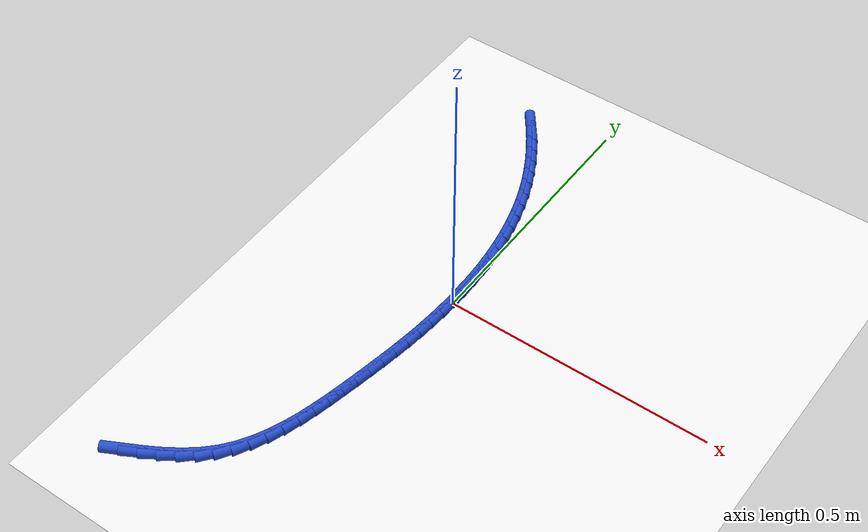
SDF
<sdf version="1.6">
 <world name="default">
  <model name="ground_plane">
   <static>1</static>
   <link name="link">
    <collision name="collision">
     <geometry><plane><normal>0 0 1</normal><size>100 100</size></plane></geometry>
     <surface><friction><ode><mu>100</mu><mu2>50</mu2></ode></friction></surface>
    </collision>
    <visual name="visual">
     <cast_shadows>0</cast_shadows>
     <geometry><plane><normal>0 0 1</normal><size>100 100</size></plane></geometry>
     <material>
      <script><uri>file://media/materials/scripts/gazebo.material</uri><name>Gazebo/WhiteGlow</name></script>
     </material>
    </visual>
   </link>
  </model>
  <model name="line">
   <link name="link_0">
    <pose>-5.637851296924623e-18 2.7755575615628914e-17 0.01 0 1.57 1.561397867759516</pose>
    <collision name="collision">
     <geometry><cylinder><radius>0.01</radius><length>0.08</length></cylinder></geometry>
    </collision>
    <visual name="visual">
     <material>
      <script><name>Gazebo/Blue</name><uri>file://media/materials/scripts/gazebo.material</uri></script>
     </material>
     <geometry><cylinder><radius>0.01</radius><length>0.08</length></cylinder></geometry>
    </visual>
   </link>
   <link name="link_1">
    <pose>0.00027525127807984047 0.029285989605968513 0.01 0 1.57 -1.548251285958362</pose>
    <collision name="collision">
     <geometry><cylinder><radius>0.01</radius><length>0.08</length></cylinder></geometry>
    </collision>
    <visual name="visual">
     <material>
      <script><name>Gazebo/Blue</name><uri>file://media/materials/scripts/gazebo.material</uri></script>
     </material>
     <geometry><cylinder><radius>0.01</radius><length>0.08</length></cylinder></geometry>
    </visual>
   </link>
   <link name="link_2">
    <pose>-0.0003881495568125055 0.05870658096135193 0.01 0 1.57 -1.514962224122844</pose>
    <collision name="collision">
     <geometry><cylinder><radius>0.01</radius><length>0.08</length></cylinder></geometry>
    </collision>
    <visual name="visual">
     <material>
      <script><name>Gazebo/Blue</name><uri>file://media/materials/scripts/gazebo.material</uri></script>
     </material>
     <geometry><cylinder><radius>0.01</radius><length>0.08</length></cylinder></geometry>
    </visual>
   </link>
   <link name="link_3">
    <pose>-0.002034328469329102 0.08815933211182136 0.01 0 1.57 -1.4800706377789132</pose>
    <collision name="collision">
     <geometry><cylinder><radius>0.01</radius><length>0.08</length></cylinder></geometry>
    </collision>
    <visual name="visual">
     <material>
      <script><name>Gazebo/Blue</name><uri>file://media/materials/scripts/gazebo.material</uri></script>
     </material>
     <geometry><cylinder><radius>0.01</radius><length>0.08</length></cylinder></geometry>
    </visual>
   </link>
   <link name="link_4">
    <pose>-0.004707411424122017 0.11754180110304793 0.01 0 1.57 -1.4433112256710268</pose>
    <collision name="collision">
     <geometry><cylinder><radius>0.01</radius><length>0.08</length></cylinder></geometry>
    </collision>
    <visual name="visual">
     <material>
      <script><name>Gazebo/Blue</name><uri>file://media/materials/scripts/gazebo.material</uri></script>
     </material>
     <geometry><cylinder><radius>0.01</radius><length>0.08</length></cylinder></geometry>
    </visual>
   </link>
   <link name="link_5">
    <pose>-0.0084515243858433 0.14675154598070256 0.01 0 1.57 -1.4044091291113399</pose>
    <collision name="collision">
     <geometry><cylinder><radius>0.01</radius><length>0.08</length></cylinder></geometry>
    </collision>
    <visual name="visual">
     <material>
      <script><name>Gazebo/Blue</name><uri>file://media/materials/scripts/gazebo.material</uri></script>
     </material>
     <geometry><cylinder><radius>0.01</radius><length>0.08</length></cylinder></geometry>
    </visual>
   </link>
   <link name="link_6">
    <pose>-0.013310793319145016 0.17568612479045628 0.01 0 1.57 -1.363080243468595</pose>
    <collision name="collision">
     <geometry><cylinder><radius>0.01</radius><length>0.08</length></cylinder></geometry>
    </collision>
    <visual name="visual">
     <material>
      <script><name>Gazebo/Blue</name><uri>file://media/materials/scripts/gazebo.material</uri></script>
     </material>
     <geometry><cylinder><radius>0.01</radius><length>0.08</length></cylinder></geometry>
    </visual>
   </link>
   <link name="link_7">
    <pose>-0.019329344188679223 0.2042430955779802 0.01 0 1.57 -1.3190335570943579</pose>
    <collision name="collision">
     <geometry><cylinder><radius>0.01</radius><length>0.08</length></cylinder></geometry>
    </collision>
    <visual name="visual">
     <material>
      <script><name>Gazebo/Blue</name><uri>file://media/materials/scripts/gazebo.material</uri></script>
     </material>
     <geometry><cylinder><radius>0.01</radius><length>0.08</length></cylinder></geometry>
    </visual>
   </link>
   <link name="link_8">
    <pose>-0.026551302959097984 0.23232001638894534 0.01 0 1.57 -1.2720205170319978</pose>
    <collision name="collision">
     <geometry><cylinder><radius>0.01</radius><length>0.08</length></cylinder></geometry>
    </collision>
    <visual name="visual">
     <material>
      <script><name>Gazebo/Blue</name><uri>file://media/materials/scripts/gazebo.material</uri></script>
     </material>
     <geometry><cylinder><radius>0.01</radius><length>0.08</length></cylinder></geometry>
    </visual>
   </link>
   <link name="link_9">
    <pose>-0.03501991515965042 0.2598159189661814 0.01 0 1.57 -1.2234963787218534</pose>
    <collision name="collision">
     <geometry><cylinder><radius>0.01</radius><length>0.08</length></cylinder></geometry>
    </collision>
    <visual name="visual">
     <material>
      <script><name>Gazebo/Blue</name><uri>file://media/materials/scripts/gazebo.material</uri></script>
     </material>
     <geometry><cylinder><radius>0.01</radius><length>0.08</length></cylinder></geometry>
    </visual>
   </link>
   <link name="link_10">
    <pose>-0.04474565112624375 0.2866846950787487 0.01 0 1.57 -1.1757572121481534</pose>
    <collision name="collision">
     <geometry><cylinder><radius>0.01</radius><length>0.08</length></cylinder></geometry>
    </collision>
    <visual name="visual">
     <material>
      <script><name>Gazebo/Blue</name><uri>file://media/materials/scripts/gazebo.material</uri></script>
     </material>
     <geometry><cylinder><radius>0.01</radius><length>0.08</length></cylinder></geometry>
    </visual>
   </link>
   <link name="link_11">
    <pose>-0.05569722637395822 0.31295012687108886 0.01 0 1.57 -1.1292400550771662</pose>
    <collision name="collision">
     <geometry><cylinder><radius>0.01</radius><length>0.08</length></cylinder></geometry>
    </collision>
    <visual name="visual">
     <material>
      <script><name>Gazebo/Blue</name><uri>file://media/materials/scripts/gazebo.material</uri></script>
     </material>
     <geometry><cylinder><radius>0.01</radius><length>0.08</length></cylinder></geometry>
    </visual>
   </link>
   <link name="link_12">
    <pose>-0.06784064698292787 0.3386405316148859 0.01 0 1.57 -1.0842107722266923</pose>
    <collision name="collision">
     <geometry><cylinder><radius>0.01</radius><length>0.08</length></cylinder></geometry>
    </collision>
    <visual name="visual">
     <material>
      <script><name>Gazebo/Blue</name><uri>file://media/materials/scripts/gazebo.material</uri></script>
     </material>
     <geometry><cylinder><radius>0.01</radius><length>0.08</length></cylinder></geometry>
    </visual>
   </link>
   <link name="link_13">
    <pose>-0.08114191903328674 0.3637842265818242 0.01 0 1.57 -1.0408947050663275</pose>
    <collision name="collision">
     <geometry><cylinder><radius>0.01</radius><length>0.08</length></cylinder></geometry>
    </collision>
    <visual name="visual">
     <material>
      <script><name>Gazebo/Blue</name><uri>file://media/materials/scripts/gazebo.material</uri></script>
     </material>
     <geometry><cylinder><radius>0.01</radius><length>0.08</length></cylinder></geometry>
    </visual>
   </link>
   <link name="link_14">
    <pose>-0.09556704860516888 0.3884095290435879 0.01 0 1.57 -0.9994738002689617</pose>
    <collision name="collision">
     <geometry><cylinder><radius>0.01</radius><length>0.08</length></cylinder></geometry>
    </collision>
    <visual name="visual">
     <material>
      <script><name>Gazebo/Blue</name><uri>file://media/materials/scripts/gazebo.material</uri></script>
     </material>
     <geometry><cylinder><radius>0.01</radius><length>0.08</length></cylinder></geometry>
    </visual>
   </link>
   <link name="link_15">
    <pose>-0.11108204177870831 0.4125447562718611 0.01 0 1.57 -0.9600863981843658</pose>
    <collision name="collision">
     <geometry><cylinder><radius>0.01</radius><length>0.08</length></cylinder></geometry>
    </collision>
    <visual name="visual">
     <material>
      <script><name>Gazebo/Blue</name><uri>file://media/materials/scripts/gazebo.material</uri></script>
     </material>
     <geometry><cylinder><radius>0.01</radius><length>0.08</length></cylinder></geometry>
    </visual>
   </link>
   <link name="link_16">
    <pose>-0.12765290463403917 0.43621822553832834 0.01 0 1.57 -0.9228292383784431</pose>
    <collision name="collision">
     <geometry><cylinder><radius>0.01</radius><length>0.08</length></cylinder></geometry>
    </collision>
    <visual name="visual">
     <material>
      <script><name>Gazebo/Blue</name><uri>file://media/materials/scripts/gazebo.material</uri></script>
     </material>
     <geometry><cylinder><radius>0.01</radius><length>0.08</length></cylinder></geometry>
    </visual>
   </link>
   <link name="link_228">
    <pose>-0.2448302101102575 -0.5636305633604234 0.01 0 1.57 0.4773172359151589</pose>
    <collision name="collision">
     <geometry><cylinder><radius>0.01</radius><length>0.08</length></cylinder></geometry>
    </collision>
    <visual name="visual">
     <material>
      <script><name>Gazebo/Blue</name><uri>file://media/materials/scripts/gazebo.material</uri></script>
     </material>
     <geometry><cylinder><radius>0.01</radius><length>0.08</length></cylinder></geometry>
    </visual>
   </link>
   <link name="link_229">
    <pose>-0.21663461224299072 -0.5490476393409937 0.01 0 1.57 0.5208552164141109</pose>
    <collision name="collision">
     <geometry><cylinder><radius>0.01</radius><length>0.08</length></cylinder></geometry>
    </collision>
    <visual name="visual">
     <material>
      <script><name>Gazebo/Blue</name><uri>file://media/materials/scripts/gazebo.material</uri></script>
     </material>
     <geometry><cylinder><radius>0.01</radius><length>0.08</length></cylinder></geometry>
    </visual>
   </link>
   <link name="link_230">
    <pose>-0.18956062818058614 -0.5335153497436242 0.01 0 1.57 0.5840720616418952</pose>
    <collision name="collision">
     <geometry><cylinder><radius>0.01</radius><length>0.08</length></cylinder></geometry>
    </collision>
    <visual name="visual">
     <material>
      <script><name>Gazebo/Blue</name><uri>file://media/materials/scripts/gazebo.material</uri></script>
     </material>
     <geometry><cylinder><radius>0.01</radius><length>0.08</length></cylinder></geometry>
    </visual>
   </link>
   <link name="link_231">
    <pose>-0.1641094821897093 -0.5166920397709792 0.01 0 1.57 0.6693413709127856</pose>
    <collision name="collision">
     <geometry><cylinder><radius>0.01</radius><length>0.08</length></cylinder></geometry>
    </collision>
    <visual name="visual">
     <material>
      <script><name>Gazebo/Blue</name><uri>file://media/materials/scripts/gazebo.material</uri></script>
     </material>
     <geometry><cylinder><radius>0.01</radius><length>0.08</length></cylinder></geometry>
    </visual>
   </link>
   <link name="link_232">
    <pose>-0.1407823985370258 -0.49823605462572246 0.01 0 1.57 0.7787603771122028</pose>
    <collision name="collision">
     <geometry><cylinder><radius>0.01</radius><length>0.08</length></cylinder></geometry>
    </collision>
    <visual name="visual">
     <material>
      <script><name>Gazebo/Blue</name><uri>file://media/materials/scripts/gazebo.material</uri></script>
     </material>
     <geometry><cylinder><radius>0.01</radius><length>0.08</length></cylinder></geometry>
    </visual>
   </link>
   <link name="link_233">
    <pose>-0.12007972861773199 -0.47780641618866987 0.01 0 1.57 0.9029127635339222</pose>
    <collision name="collision">
     <geometry><cylinder><radius>0.01</radius><length>0.08</length></cylinder></geometry>
    </collision>
    <visual name="visual">
     <material>
      <script><name>Gazebo/Blue</name><uri>file://media/materials/scripts/gazebo.material</uri></script>
     </material>
     <geometry><cylinder><radius>0.01</radius><length>0.08</length></cylinder></geometry>
    </visual>
   </link>
   <link name="link_234">
    <pose>-0.10227649652714468 -0.45523682734042986 0.01 0 1.57 1.016338295662614</pose>
    <collision name="collision">
     <geometry><cylinder><radius>0.01</radius><length>0.08</length></cylinder></geometry>
    </collision>
    <visual name="visual">
     <material>
      <script><name>Gazebo/Blue</name><uri>file://media/materials/scripts/gazebo.material</uri></script>
     </material>
     <geometry><cylinder><radius>0.01</radius><length>0.08</length></cylinder></geometry>
    </visual>
   </link>
   <link name="link_235">
    <pose>-0.08712360330202244 -0.43076730808311237 0.01 0 1.57 1.1136096589686129</pose>
    <collision name="collision">
     <geometry><cylinder><radius>0.01</radius><length>0.08</length></cylinder></geometry>
    </collision>
    <visual name="visual">
     <material>
      <script><name>Gazebo/Blue</name><uri>file://media/materials/scripts/gazebo.material</uri></script>
     </material>
     <geometry><cylinder><radius>0.01</radius><length>0.08</length></cylinder></geometry>
    </visual>
   </link>
   <link name="link_236">
    <pose>-0.07429759493320293 -0.40469552085171573 0.01 0 1.57 1.1943264480536624</pose>
    <collision name="collision">
     <geometry><cylinder><radius>0.01</radius><length>0.08</length></cylinder></geometry>
    </collision>
    <visual name="visual">
     <material>
      <script><name>Gazebo/Blue</name><uri>file://media/materials/scripts/gazebo.material</uri></script>
     </material>
     <geometry><cylinder><radius>0.01</radius><length>0.08</length></cylinder></geometry>
    </visual>
   </link>
   <link name="link_237">
    <pose>-0.06347501741152378 -0.37731912808123774 0.01 0 1.57 1.2591791342178982</pose>
    <collision name="collision">
     <geometry><cylinder><radius>0.01</radius><length>0.08</length></cylinder></geometry>
    </collision>
    <visual name="visual">
     <material>
      <script><name>Gazebo/Blue</name><uri>file://media/materials/scripts/gazebo.material</uri></script>
     </material>
     <geometry><cylinder><radius>0.01</radius><length>0.08</length></cylinder></geometry>
    </visual>
   </link>
   <link name="link_238">
    <pose>-0.0543324167278226 -0.3489357922066765 0.01 0 1.57 1.3092941033102719</pose>
    <collision name="collision">
     <geometry><cylinder><radius>0.01</radius><length>0.08</length></cylinder></geometry>
    </collision>
    <visual name="visual">
     <material>
      <script><name>Gazebo/Blue</name><uri>file://media/materials/scripts/gazebo.material</uri></script>
     </material>
     <geometry><cylinder><radius>0.01</radius><length>0.08</length></cylinder></geometry>
    </visual>
   </link>
   <link name="link_239">
    <pose>-0.04654633887293702 -0.31984317566302983 0.01 0 1.57 1.3457893580686118</pose>
    <collision name="collision">
     <geometry><cylinder><radius>0.01</radius><length>0.08</length></cylinder></geometry>
    </collision>
    <visual name="visual">
     <material>
      <script><name>Gazebo/Blue</name><uri>file://media/materials/scripts/gazebo.material</uri></script>
     </material>
     <geometry><cylinder><radius>0.01</radius><length>0.08</length></cylinder></geometry>
    </visual>
   </link>
   <link name="link_240">
    <pose>-0.03979332983770484 -0.2903389408852969 0.01 0 1.57 1.3695159901515952</pose>
    <collision name="collision">
     <geometry><cylinder><radius>0.01</radius><length>0.08</length></cylinder></geometry>
    </collision>
    <visual name="visual">
     <material>
      <script><name>Gazebo/Blue</name><uri>file://media/materials/scripts/gazebo.material</uri></script>
     </material>
     <geometry><cylinder><radius>0.01</radius><length>0.08</length></cylinder></geometry>
    </visual>
   </link>
   <link name="link_241">
    <pose>-0.033749935612963335 -0.26072075030847364 0.01 0 1.57 1.381445154050231</pose>
    <collision name="collision">
     <geometry><cylinder><radius>0.01</radius><length>0.08</length></cylinder></geometry>
    </collision>
    <visual name="visual">
     <material>
      <script><name>Gazebo/Blue</name><uri>file://media/materials/scripts/gazebo.material</uri></script>
     </material>
     <geometry><cylinder><radius>0.01</radius><length>0.08</length></cylinder></geometry>
    </visual>
   </link>
   <link name="link_242">
    <pose>-0.028106504422727566 -0.23127375472579328 0.01 0 1.57 1.3898043378636258</pose>
    <collision name="collision">
     <geometry><cylinder><radius>0.01</radius><length>0.08</length></cylinder></geometry>
    </collision>
    <visual name="visual">
     <material>
      <script><name>Gazebo/Blue</name><uri>file://media/materials/scripts/gazebo.material</uri></script>
     </material>
     <geometry><cylinder><radius>0.01</radius><length>0.08</length></cylinder></geometry>
    </visual>
   </link>
   <link name="link_243">
    <pose>-0.022766089274403014 -0.20209028931742914 0.01 0 1.57 1.4010326400703832</pose>
    <collision name="collision">
     <geometry><cylinder><radius>0.01</radius><length>0.08</length></cylinder></geometry>
    </collision>
    <visual name="visual">
     <material>
      <script><name>Gazebo/Blue</name><uri>file://media/materials/scripts/gazebo.material</uri></script>
     </material>
     <geometry><cylinder><radius>0.01</radius><length>0.08</length></cylinder></geometry>
    </visual>
   </link>
   <link name="link_244">
    <pose>-0.017798704504943846 -0.1731113398176185 0.01 0 1.57 1.4153259311116546</pose>
    <collision name="collision">
     <geometry><cylinder><radius>0.01</radius><length>0.08</length></cylinder></geometry>
    </collision>
    <visual name="visual">
     <material>
      <script><name>Gazebo/Blue</name><uri>file://media/materials/scripts/gazebo.material</uri></script>
     </material>
     <geometry><cylinder><radius>0.01</radius><length>0.08</length></cylinder></geometry>
    </visual>
   </link>
   <link name="link_245">
    <pose>-0.013278849509986462 -0.14427382628174754 0.01 0 1.57 1.4326709627918808</pose>
    <collision name="collision">
     <geometry><cylinder><radius>0.01</radius><length>0.08</length></cylinder></geometry>
    </collision>
    <visual name="visual">
     <material>
      <script><name>Gazebo/Blue</name><uri>file://media/materials/scripts/gazebo.material</uri></script>
     </material>
     <geometry><cylinder><radius>0.01</radius><length>0.08</length></cylinder></geometry>
    </visual>
   </link>
   <link name="link_246">
    <pose>-0.009281023685167247 -0.11551466876520226 0.01 0 1.57 1.453012859393993</pose>
    <collision name="collision">
     <geometry><cylinder><radius>0.01</radius><length>0.08</length></cylinder></geometry>
    </collision>
    <visual name="visual">
     <material>
      <script><name>Gazebo/Blue</name><uri>file://media/materials/scripts/gazebo.material</uri></script>
     </material>
     <geometry><cylinder><radius>0.01</radius><length>0.08</length></cylinder></geometry>
    </visual>
   </link>
   <link name="link_247">
    <pose>-0.005879726426122606 -0.08677078732336882 0.01 0 1.57 1.4762506540079268</pose>
    <collision name="collision">
     <geometry><cylinder><radius>0.01</radius><length>0.08</length></cylinder></geometry>
    </collision>
    <visual name="visual">
     <material>
      <script><name>Gazebo/Blue</name><uri>file://media/materials/scripts/gazebo.material</uri></script>
     </material>
     <geometry><cylinder><radius>0.01</radius><length>0.08</length></cylinder></geometry>
    </visual>
   </link>
   <link name="link_248">
    <pose>-0.0031494571284889214 -0.05797910201163321 0.01 0 1.57 1.502233875059556</pose>
    <collision name="collision">
     <geometry><cylinder><radius>0.01</radius><length>0.08</length></cylinder></geometry>
    </collision>
    <visual name="visual">
     <material>
      <script><name>Gazebo/Blue</name><uri>file://media/materials/scripts/gazebo.material</uri></script>
     </material>
     <geometry><cylinder><radius>0.01</radius><length>0.08</length></cylinder></geometry>
    </visual>
   </link>
   <link name="link_249">
    <pose>-0.001164715187902586 -0.029076532885381503 0.01 0 1.57 1.530760850687433</pose>
    <collision name="collision">
     <geometry><cylinder><radius>0.01</radius><length>0.08</length></cylinder></geometry>
    </collision>
    <visual name="visual">
     <material>
      <script><name>Gazebo/Blue</name><uri>file://media/materials/scripts/gazebo.material</uri></script>
     </material>
     <geometry><cylinder><radius>0.01</radius><length>0.08</length></cylinder></geometry>
    </visual>
   </link>
   <link name="link_250">
    <pose>3.903127820947816e-18 2.0122792321330962e-16 0.01 0 1.57 1.5615793898001535</pose>
    <collision name="collision">
     <geometry><cylinder><radius>0.01</radius><length>0.08</length></cylinder></geometry>
    </collision>
    <visual name="visual">
     <material>
      <script><name>Gazebo/Blue</name><uri>file://media/materials/scripts/gazebo.material</uri></script>
     </material>
     <geometry><cylinder><radius>0.01</radius><length>0.08</length></cylinder></geometry>
    </visual>
   </link>
   <link name="link_251">
    <pose>0.00027018903958245764 0.029313576589125857 0.01 0 1.57 -1.5472022869364777</pose>
    <collision name="collision">
     <geometry><cylinder><radius>0.01</radius><length>0.08</length></cylinder></geometry>
    </collision>
    <visual name="visual">
     <material>
      <script><name>Gazebo/Blue</name><uri>file://media/materials/scripts/gazebo.material</uri></script>
     </material>
     <geometry><cylinder><radius>0.01</radius><length>0.08</length></cylinder></geometry>
    </visual>
   </link>
   <link name="link_252">
    <pose>-0.00042864746479161654 0.05892727682660936 0.01 0 1.57 -1.5635222777011646</pose>
    <collision name="collision">
     <geometry><cylinder><radius>0.01</radius><length>0.08</length></cylinder></geometry>
    </collision>
    <visual name="visual">
     <material>
      <script><name>Gazebo/Blue</name><uri>file://media/materials/scripts/gazebo.material</uri></script>
     </material>
     <geometry><cylinder><radius>0.01</radius><length>0.08</length></cylinder></geometry>
    </visual>
   </link>
  </model>
 </world>
</sdf>
